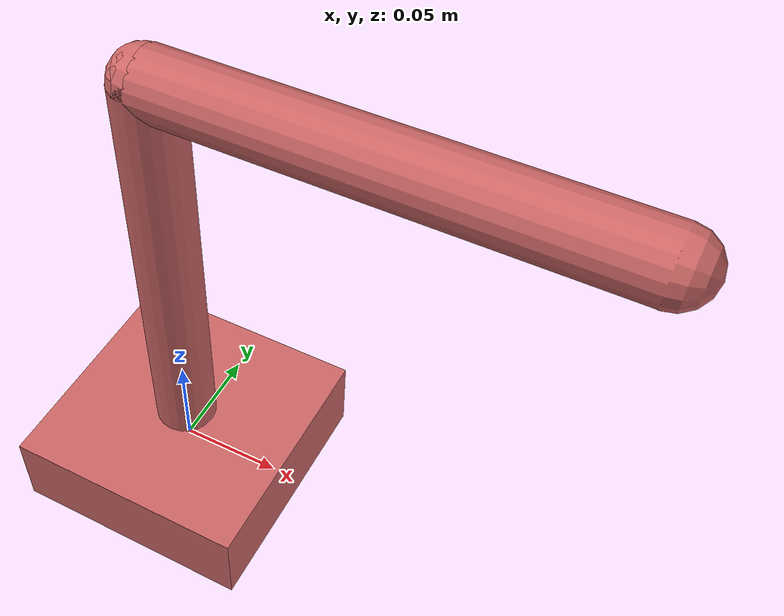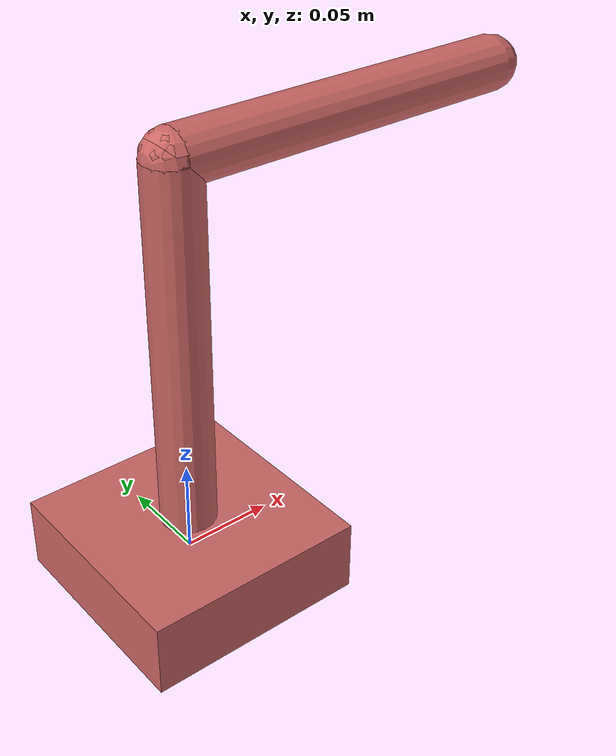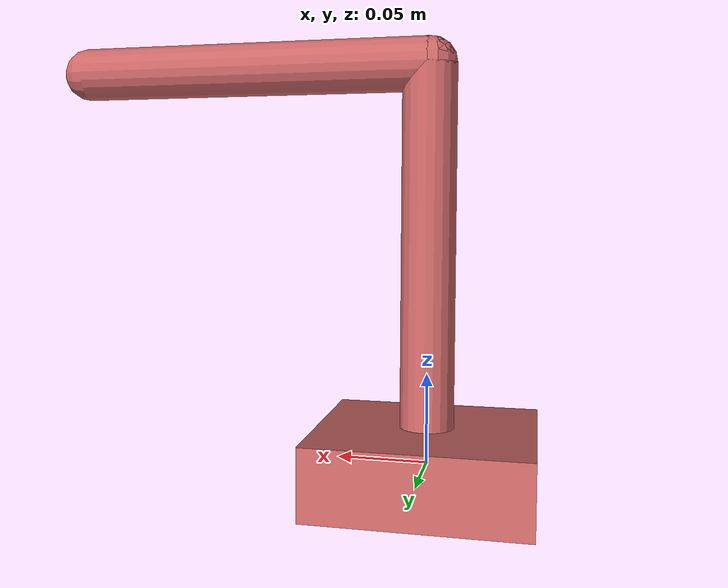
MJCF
<mujoco model="really_simple_arm">
    <compiler angle="radian" />
    <default>
        <geom rgba="0.8 0.4 0.4 1" />
        <joint type="hinge" limited="true" axis="0 1 0" range="-0.78 0.78"/>
        <position ctrllimited="true" kp="1" kv="0.1" ctrlrange="-0.78 0.78"/>
    </default>

    <worldbody>
        <body name="base" pos="0 0 0">
            <geom name="base_geom" type="box" size="0.06 0.06 0.02" />
            <body name="link1" pos="0. 0. 0.02">
                <joint name="joint_1"/>
                <geom name="link1_geom" type="capsule" fromto="0 0 0 0 0 0.20" size="0.015" />
                <body name="link2" pos="0. 0. 0.20">
                    <joint name="joint_2" />
                    <geom name="link2_geom" type="capsule" fromto="0 0 0 0.2 0 0" size="0.015" />
                </body>
            </body>
        </body>
    </worldbody>
    <actuator>
        <position name="joint_1_act" joint="joint_1"/>
        <position name="joint_2_act" joint="joint_2"/>
    </actuator>
    <contact>
        <exclude body1="base" body2="link1" />
        <exclude body1="link1" body2="link2" />
    </contact>
</mujoco>
